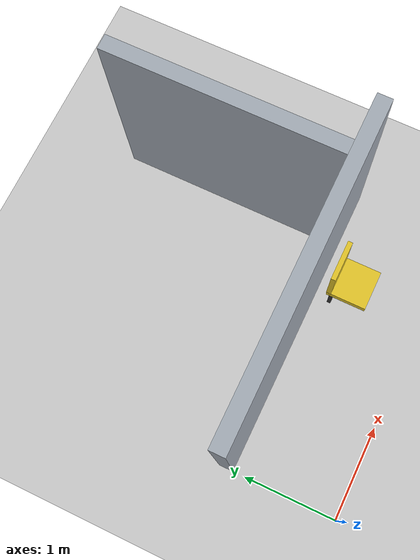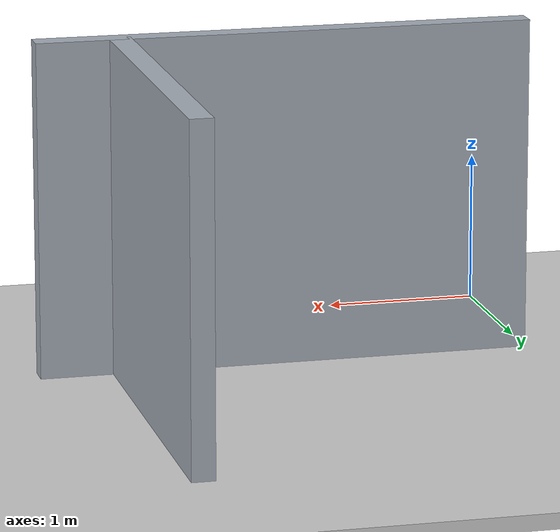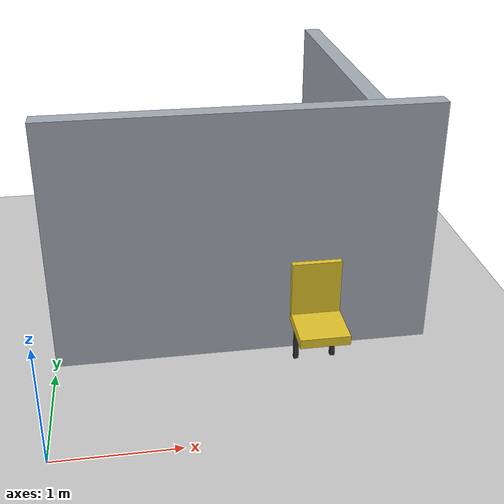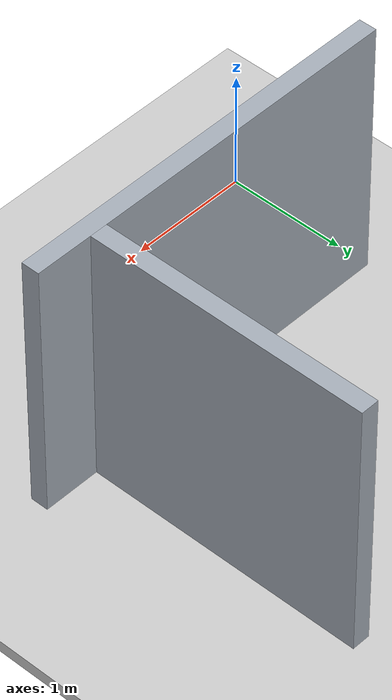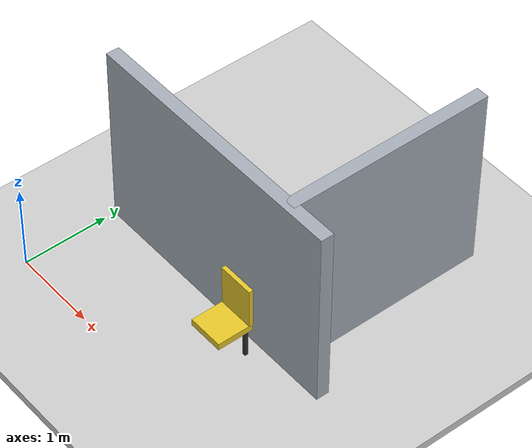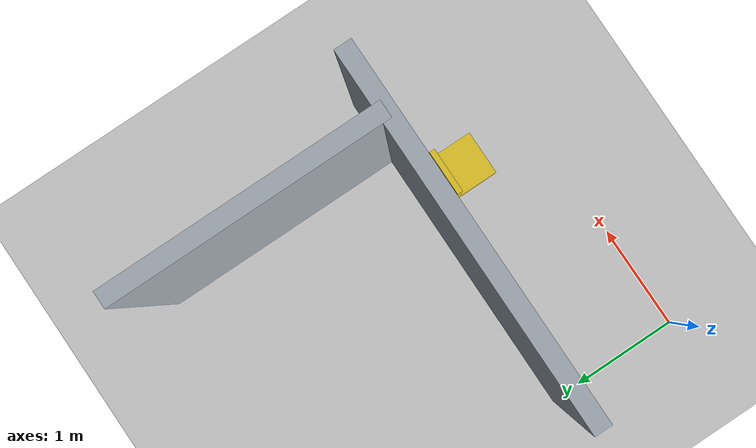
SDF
<sdf version="1.9">
 <world name="default">
  <model name="ground_plane">
   <static>true</static>
   <pose>5.15 0 -0.05 0 0 0</pose>
   <link name="body">
    <collision name="collision"><geometry><box><size>14.3 12 0.1</size></box></geometry></collision>
    <visual name="visual">
     <geometry><box><size>14.3 12 0.1</size></box></geometry>
     <material><ambient>0.8 0.8 0.8 1</ambient><diffuse>0.8 0.8 0.8 1</diffuse></material>
    </visual>
   </link>
  </model>
  <model name="hall_1_1">
   <static>true</static>
   <pose>1.625 1.2 1.1 0 0 0</pose>
   <link name="body">
    <collision name="collision"><geometry><box><size>3.25 0.15 2.2</size></box></geometry></collision>
    <visual name="visual">
     <geometry><box><size>3.25 0.15 2.2</size></box></geometry>
     <material><ambient>0.65 0.68 0.72 1</ambient><diffuse>0.65 0.68 0.72 1</diffuse></material>
    </visual>
   </link>
  </model>
  <model name="room_1_1_-1">
   <static>true</static>
   <pose>2.7 2.4 1.1 0 0 0</pose>
   <link name="body">
    <collision name="collision"><geometry><box><size>0.15 2.4 2.2</size></box></geometry></collision>
    <visual name="visual">
     <geometry><box><size>0.15 2.4 2.2</size></box></geometry>
     <material><ambient>0.65 0.68 0.72 1</ambient><diffuse>0.65 0.68 0.72 1</diffuse></material>
    </visual>
   </link>
  </model>
  <model name="chair_seat">
   <static>true</static>
   <pose>2.2 0.7999999999999999 0.4 0 0 0</pose>
   <link name="body">
    <collision name="collision"><geometry><box><size>0.42 0.42 0.08</size></box></geometry></collision>
    <visual name="visual">
     <geometry><box><size>0.42 0.42 0.08</size></box></geometry>
     <material><ambient>0.9 0.78 0.16 1</ambient><diffuse>0.9 0.78 0.16 1</diffuse></material>
    </visual>
   </link>
  </model>
  <model name="chair_back">
   <static>true</static>
   <pose>2.2 0.99 0.67 0 0 0</pose>
   <link name="body">
    <collision name="collision"><geometry><box><size>0.42 0.05 0.5</size></box></geometry></collision>
    <visual name="visual">
     <geometry><box><size>0.42 0.05 0.5</size></box></geometry>
     <material><ambient>0.9 0.78 0.16 1</ambient><diffuse>0.9 0.78 0.16 1</diffuse></material>
    </visual>
   </link>
  </model>
  <model name="chair_leg_-0.16_0.16">
   <static>true</static>
   <pose>2.04 0.96 0.19 0 0 0</pose>
   <link name="body">
    <collision name="collision"><geometry><box><size>0.04 0.04 0.38</size></box></geometry></collision>
    <visual name="visual">
     <geometry><box><size>0.04 0.04 0.38</size></box></geometry>
     <material><ambient>0.2 0.2 0.2 1</ambient><diffuse>0.2 0.2 0.2 1</diffuse></material>
    </visual>
   </link>
  </model>
  <model name="chair_leg_0.16_0.16">
   <static>true</static>
   <pose>2.3600000000000003 0.96 0.19 0 0 0</pose>
   <link name="body">
    <collision name="collision"><geometry><box><size>0.04 0.04 0.38</size></box></geometry></collision>
    <visual name="visual">
     <geometry><box><size>0.04 0.04 0.38</size></box></geometry>
     <material><ambient>0.2 0.2 0.2 1</ambient><diffuse>0.2 0.2 0.2 1</diffuse></material>
    </visual>
   </link>
  </model>
 </world>
</sdf>
